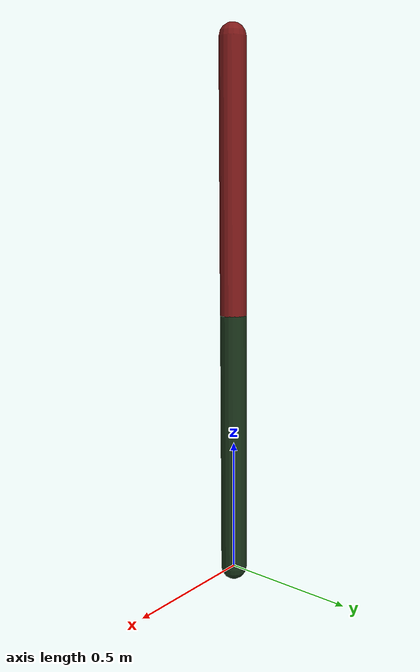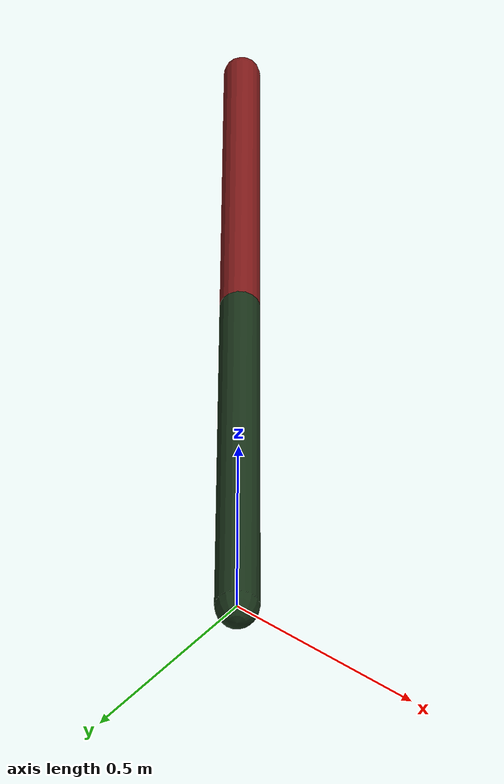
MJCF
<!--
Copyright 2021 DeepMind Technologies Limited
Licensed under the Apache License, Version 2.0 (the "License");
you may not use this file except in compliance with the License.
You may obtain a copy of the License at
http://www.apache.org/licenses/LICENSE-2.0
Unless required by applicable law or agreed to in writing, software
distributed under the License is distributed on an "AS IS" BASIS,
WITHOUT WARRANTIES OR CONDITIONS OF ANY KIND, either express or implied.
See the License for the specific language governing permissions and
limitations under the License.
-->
<mujoco model="2-link arm">
  <option collision="all" integrator = "RK4" >
   <flag energy="enable"/>
  </option>
  <visual>
    <rgba haze=".3 .3 .3 1"/>
  </visual>

  <default>
    <joint type="hinge" pos="0 0 0" axis="1 0 0" damping="0" stiffness="0"/>
  </default>

  <asset>
    <texture type="skybox" builtin="gradient" rgb1="0.6 0.6 0.6" rgb2="0 0 0" width="512" height="512"/>
    <texture name="texplane" type="2d" builtin="checker" rgb1=".25 .25 .25" rgb2=".3 .3 .3" width="512" height="512" mark="cross" markrgb=".8 .8 .8"/>
    <material name="matplane" reflectance="0.3" texture="texplane" texrepeat="1 1" texuniform="true"/>
  </asset>

  <worldbody>
    <geom name="floor" pos="0 0 -3.5" size="0 0 1" type="plane" material="matplane"/>

    <light directional="true" diffuse=".8 .8 .8" specular=".2 .2 .2" pos="5 0 0" dir="-1 0 0"/>
    <light directional="true" diffuse=".8 .8 .8" specular=".2 .2 .2" pos="0 0 5" dir="0 0 -1"/>

    <body name="link1" pos="0 0 0">
      <joint name="joint1"/>
      <geom name="l1geo" type="capsule" size="0.05" fromto="0 0 0  0 0 1" rgba=".1 .2 .1 1"/>

      <body name="link2" pos="0 0 1">
        <joint name="joint2"/>
        <geom name="l2geo" type="capsule" size="0.05" fromto="0 0 0  0 0 1" rgba=".5 .1 .1 1"/>
      </body>
    </body>

  </worldbody>

 <sensor>
  <subtreecom name="COM" body="world"/>
  <subtreelinvel name="comvel" body="world"/>
  <subtreeangmom name="AngMom" body="world"/>
 </sensor>

  <contact>
    <exclude body1="world" body2="link1"/>
    <exclude body1="link1" body2="link2"/>
    <exclude body1="world" body2="link2"/>
  </contact>

  <actuator>
    <motor name="motor2" joint="joint2"/>
  </actuator>

</mujoco>
